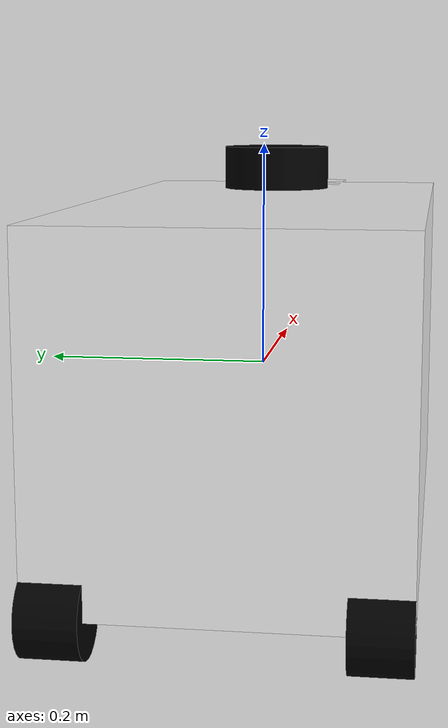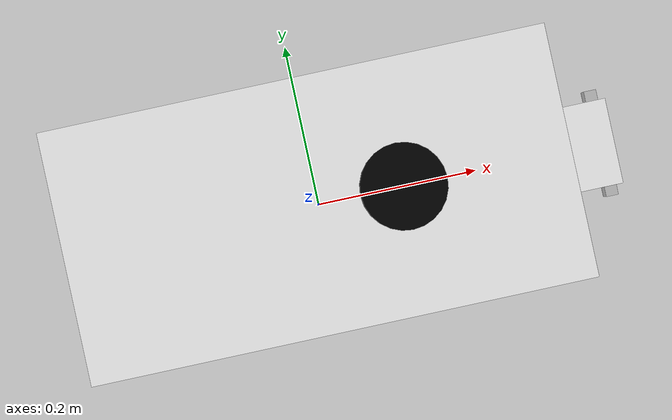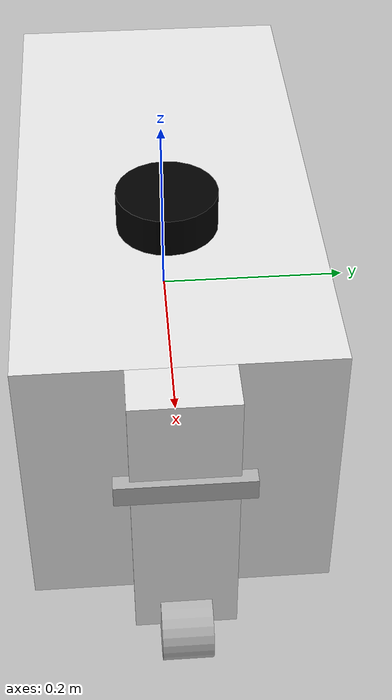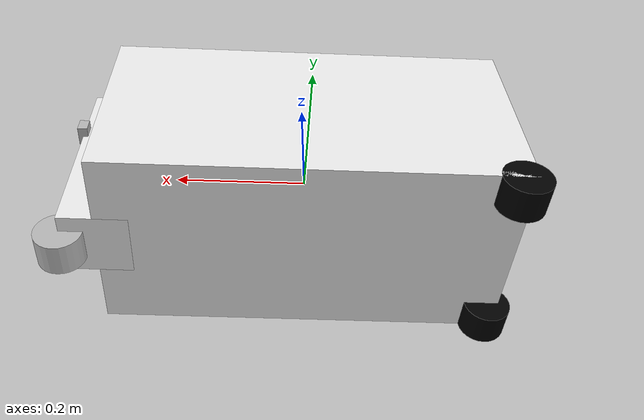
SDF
<sdf version='1.11'>
  <model name='tortoisebot'>

    <link name="base_footprint">
      <!-- Empty link serves as ground reference -->
    </link>

    <joint name="base_footprint_joint" type="fixed">
      <parent>base_footprint</parent>
      <child>base_link</child>
      <pose>0 0 0.15 0 0 0</pose> <!-- Elevate base_link above ground -->
    </joint>

    <link name='base_link'>
      <inertial>
        <pose>0 0 0 0 0 0</pose>
        <mass>1</mass>
        <inertia>
          <ixx>0.014999999999999999</ixx>
          <ixy>0</ixy>
          <ixz>0</ixz>
          <iyy>0.037499999999999999</iyy>
          <iyz>0</iyz>
          <izz>0.037499999999999999</izz>
        </inertia>
      </inertial>
      <collision name='base_link_collision'>
        <pose>0 0 0 0 0 0</pose>
        <geometry>
          <box>
            <size>0.59999999999999998 0.29999999999999999 0.29999999999999999</size>
          </box>
        </geometry>
      </collision>
      <visual name='base_link_visual'>
        <pose>0 0 0 0 0 0</pose>
        <geometry>
          <box>
            <size>0.59999999999999998 0.29999999999999999 0.29999999999999999</size>
          </box>
        </geometry>
        <material>
          <diffuse>0.9375 0.9375 0.9375 1</diffuse>
          <ambient>0.9375 0.9375 0.9375 1</ambient>
        </material>
      </visual>
    </link>
    <joint name='front_caster_joint' type='revolute'>
      <pose relative_to='base_link'>0.29999999999999999 0 0 0 0 0</pose>
      <parent>base_link</parent>
      <child>front_caster</child>
      <axis>
        <xyz>0 0 1</xyz>
        <limit>
          <lower>-inf</lower>
          <upper>inf</upper>
        </limit>
        <dynamics>
          <spring_reference>0</spring_reference>
          <spring_stiffness>0</spring_stiffness>
        </dynamics>
      </axis>
    </joint>
    <link name='front_caster'>
      <pose relative_to='front_caster_joint'>0 0 0 0 0 0</pose>
      <inertial>
        <pose>0 0 0 0 0 0</pose>
        <mass>0.10000000000000001</mass>
        <inertia>
          <ixx>0.00083000000000000001</ixx>
          <ixy>0</ixy>
          <ixz>0</ixz>
          <iyy>0.00083000000000000001</iyy>
          <iyz>0</iyz>
          <izz>0.00016699999999999999</izz>
        </inertia>
      </inertial>
      <collision name='front_caster_collision'>
        <pose>0 0 0 0 0 0</pose>
        <geometry>
          <box>
            <size>0.10000000000000001 0.10000000000000001 0.29999999999999999</size>
          </box>
        </geometry>
      </collision>
      <visual name='front_caster_visual'>
        <pose>0 0 0 0 0 0</pose>
        <geometry>
          <box>
            <size>0.10000000000000001 0.10000000000000001 0.29999999999999999</size>
          </box>
        </geometry>
        <material>
          <diffuse>0.9375 0.9375 0.9375 1</diffuse>
          <ambient>0.9375 0.9375 0.9375 1</ambient>
        </material>
      </visual>
    </link>
    <joint name='front_wheel_joint' type='revolute'>
      <pose relative_to='front_caster'>0.050000000000000003 0 -0.14999999999999999 -1.5708 0 0</pose>
      <parent>front_caster</parent>
      <child>front_wheel</child>
      <axis>
        <xyz>0 0 1</xyz>
        <limit>
          <lower>-inf</lower>
          <upper>inf</upper>
        </limit>
        <dynamics>
          <spring_reference>0</spring_reference>
          <spring_stiffness>0</spring_stiffness>
        </dynamics>
      </axis>
    </joint>
    <link name='front_wheel'>
      <pose relative_to='front_wheel_joint'>0 0 0 0 0 0</pose>
      <inertial>
        <pose>0 0 0 0 0 0</pose>
        <mass>0.10000000000000001</mass>
        <inertia>
          <ixx>5.1458000000000001e-05</ixx>
          <ixy>0</ixy>
          <ixz>0</ixz>
          <iyy>5.1458000000000001e-05</iyy>
          <iyz>0</iyz>
          <izz>6.1249999999999998e-05</izz>
        </inertia>
      </inertial>
      <collision name='front_wheel_collision'>
        <pose>0 0 0 0 0 0</pose>
        <geometry>
          <cylinder>
            <length>0.050000000000000003</length>
            <radius>0.035000000000000003</radius>
          </cylinder>
        </geometry>
      </collision>
      <visual name='front_wheel_visual'>
        <pose>0 0 0 0 0 0</pose>
        <geometry>
          <cylinder>
            <length>0.050000000000000003</length>
            <radius>0.035000000000000003</radius>
          </cylinder>
        </geometry>
      </visual>
    </link>
    <joint name='left_wheel_joint' type='revolute'>
      <pose relative_to='base_link'>-0.28249999999999997 0.125 -0.14999999999999999 -1.5708 0 0</pose>
      <parent>base_link</parent>
      <child>left_wheel</child>
      <axis>
        <xyz>0 0 1</xyz>
        <limit>
          <lower>-inf</lower>
          <upper>inf</upper>
        </limit>
        <dynamics>
          <spring_reference>0</spring_reference>
          <spring_stiffness>0</spring_stiffness>
        </dynamics>
      </axis>
    </joint>
    <link name='left_wheel'>
      <pose relative_to='left_wheel_joint'>0 0 0 0 0 0</pose>
      <inertial>
        <pose>0 0 0 0 0 0</pose>
        <mass>0.10000000000000001</mass>
        <inertia>
          <ixx>5.1458000000000001e-05</ixx>
          <ixy>0</ixy>
          <ixz>0</ixz>
          <iyy>5.1458000000000001e-05</iyy>
          <iyz>0</iyz>
          <izz>6.1249999999999998e-05</izz>
        </inertia>
      </inertial>
      <collision name='left_wheel_collision'>
        <pose>0 0 0 0 0 0</pose>
        <geometry>
          <cylinder>
            <length>0.050000000000000003</length>
            <radius>0.035000000000000003</radius>
          </cylinder>
        </geometry>
      </collision>
      <visual name='left_wheel_visual'>
        <pose>0 0 0 0 0 0</pose>
        <geometry>
          <cylinder>
            <length>0.050000000000000003</length>
            <radius>0.035000000000000003</radius>
          </cylinder>
        </geometry>
        <material>
          <diffuse>0 0 0 1</diffuse>
          <ambient>0 0 0 1</ambient>
        </material>
      </visual>
    </link>
    <joint name='right_wheel_joint' type='revolute'>
      <pose relative_to='base_link'>-0.28249999999999997 -0.125 -0.14999999999999999 -1.5708 0 0</pose>
      <parent>base_link</parent>
      <child>right_wheel</child>
      <axis>
        <xyz>0 0 1</xyz>
        <limit>
          <lower>-inf</lower>
          <upper>inf</upper>
        </limit>
        <dynamics>
          <spring_reference>0</spring_reference>
          <spring_stiffness>0</spring_stiffness>
        </dynamics>
      </axis>
    </joint>
    <link name='right_wheel'>
      <pose relative_to='right_wheel_joint'>0 0 0 0 0 0</pose>
      <inertial>
        <pose>0 0 0 0 0 0</pose>
        <mass>0.10000000000000001</mass>
        <inertia>
          <ixx>5.1458000000000001e-05</ixx>
          <ixy>0</ixy>
          <ixz>0</ixz>
          <iyy>5.1458000000000001e-05</iyy>
          <iyz>0</iyz>
          <izz>6.1249999999999998e-05</izz>
        </inertia>
      </inertial>
      <collision name='right_wheel_collision'>
        <pose>0 0 0 0 0 0</pose>
        <geometry>
          <cylinder>
            <length>0.050000000000000003</length>
            <radius>0.035000000000000003</radius>
          </cylinder>
        </geometry>
      </collision>
      <visual name='right_wheel_visual'>
        <pose>0 0 0 0 0 0</pose>
        <geometry>
          <cylinder>
            <length>0.050000000000000003</length>
            <radius>0.035000000000000003</radius>
          </cylinder>
        </geometry>
        <material>
          <diffuse>0 0 0 1</diffuse>
          <ambient>0 0 0 1</ambient>
        </material>
      </visual>
    </link>

        <joint name="camera_joint" type="fixed">
      <parent>base_link</parent>
      <child>camera_link</child>
      <pose relative_to="base_link">0.35 0 0.05 0 0 0</pose>
    </joint>

    <link name="camera_link">
      <pose relative_to="camera_joint"/>
      <visual name="camera_link_visual">
        <geometry>
          <box><size>
            0.015 0.130 0.0222
          </size></box>
        </geometry>
      </visual>

    <collision name="camera_link_collision">
      <geometry>
        <box><size>
          0.015 0.130 0.0222
        </size></box>
      </geometry>
    </collision>

      <sensor name="depth_camera" type="rgbd">
          <always_on>true</always_on>
          <visualize>true</visualize>
          <update_rate>10.0</update_rate>
          <topic>depth_camera</topic>
          <gz_frame_id>camera_link</gz_frame_id>
          <camera>
            <horizontal_fov>1.089</horizontal_fov>
            <image>
              <width>320</width>
              <height>240</height>
            </image>
            <clip>
              <near>0.05</near>
              <far>2.5</far>
            </clip>
            <depth_camera>
               <output_type>color_point_cloud</output_type>
            </depth_camera>
          </camera>
          <baseline>0.2</baseline>
          <pointCloudCutoff>0.5</pointCloudCutoff>
          <pointCloudCutoffMax>3.0</pointCloudCutoffMax>
          <distortionK1>0</distortionK1>
          <distortionK2>0</distortionK2>
          <distortionK3>0</distortionK3>
          <distortionT1>0</distortionT1>
          <distortionT2>0</distortionT2>
          <CxPrime>0</CxPrime>
          <Cx>0</Cx>
          <Cy>0</Cy>
          <focalLength>0</focalLength>
          <hackBaseline>0</hackBaseline>

      </sensor>
   </link>

    <joint name='laser_joint' type='fixed'>
      <pose relative_to='base_link'>0.1 0.0 0.175 0 0 0</pose>
      <parent>base_link</parent>
      <child>lidar_link</child>
      <axis>
        <xyz>0 0 1</xyz>
        <limit>
          <lower>-inf</lower>
          <upper>inf</upper>
        </limit>
        <dynamics>
          <spring_reference>0</spring_reference>
          <spring_stiffness>0</spring_stiffness>
        </dynamics>
      </axis>
    </joint>

    <link name='lidar_link'>
      <pose relative_to='laser_joint'>0 0 0 0 0 0</pose>
      <inertial>
        <pose>0 0 0 0 0 0</pose>
        <mass>0.1</mass>
        <inertia>
          <ixx>0.000075833</ixx>
          <ixy>0</ixy>
          <ixz>0</ixz>
          <iyy>0.000075833</iyy>
          <iyz>0</iyz>
          <izz>0.000125</izz>
        </inertia>
      </inertial>
      <collision name='left_wheel_collision'>
        <pose>0 0 0 0 0 0</pose>
        <geometry>
          <cylinder>
            <length>0.04</length>
            <radius>0.05</radius>
          </cylinder>
        </geometry>
      </collision>
      <visual name='left_wheel_visual'>
        <pose>0 0 0 0 0 0</pose>
        <geometry>
          <cylinder>
            <length>0.04</length>
            <radius>0.05</radius>
          </cylinder>
        </geometry>
        <material>
          <diffuse>0 0 0 1</diffuse>
          <ambient>0 1 0 1</ambient>
        </material>
      </visual>

      <sensor name="lidar_sensor" type="gpu_lidar">
        <pose>0.0 0.0 -0.02 0 0 0</pose>
        <topic>scan</topic>
        <update_rate>5</update_rate>
        <lidar>
          <scan>
            <horizontal>
              <samples>360</samples>
              <resolution>1</resolution>
              <min_angle>-3.14</min_angle>
              <max_angle>3.14</max_angle>
            </horizontal>
            <vertical>
              <samples>1</samples>
              <resolution>1</resolution>
              <min_angle>0</min_angle>
              <max_angle>0</max_angle>
            </vertical>
          </scan>
          <range>
            <min>0.12</min>
            <max>3.5</max>
            <resolution>0.01</resolution>
          </range>
          <noise>
            <type>gaussian</type>
            <mean>0</mean>
            <stddev>0.01</stddev>
          </noise>
        </lidar>
        <always_on>1</always_on>
        <visualize>1</visualize>
      </sensor>
    </link>

       <plugin filename="gz-sim-sensors-system" name="gz::sim::v8::systems::Sensors">
         <render_engine>ogre2</render_engine>
        </plugin>

        <plugin filename="gz-sim-diff-drive-system" name="gz::sim::systems::DiffDrive">
            <right_joint>right_wheel_joint</right_joint>
            <left_joint>left_wheel_joint</left_joint>

            <wheel_separation>0.25</wheel_separation>
            <wheel_radius>0.07</wheel_radius>

            <max_linear_acceleration>10</max_linear_acceleration>

            <topic>cmd_vel</topic>
        </plugin>

        <plugin
            filename="gz-sim-odometry-publisher-system"
            name="gz::sim::systems::OdometryPublisher">
            <odom_frame>odom</odom_frame>
            <robot_base_frame>base_footprint</robot_base_frame>
            <odom_publish_frequency>50</odom_publish_frequency>
            <odom_topic>/odom</odom_topic>
            <tf_topic>/tf</tf_topic>
            <dimensions>2</dimensions>
        </plugin>

        <plugin filename="gz-sim-joint-state-publisher-system" name="gz::sim::systems::JointStatePublisher">
            <topic>joint_states</topic>
            <joint_name>right_wheel_joint</joint_name>
            <joint_name>left_wheel_joint</joint_name>
            <joint_name>front_caster_joint</joint_name>
            <joint_name>front_wheel_joint</joint_name>
            <joint_name>base_footprint_joint</joint_name>
            <joint_name>laser_joint</joint_name>
            <joint_name>camera_joint</joint_name>

        </plugin>

  </model>
</sdf>
